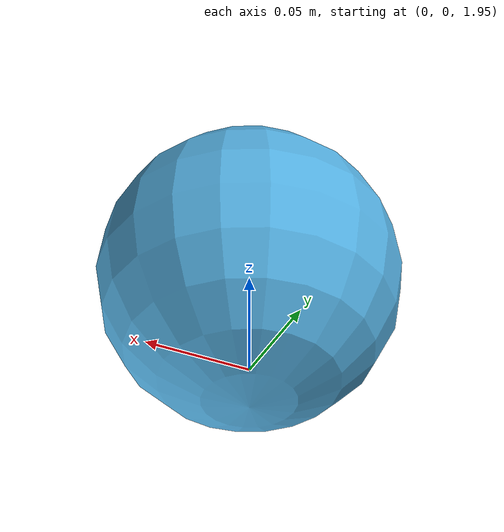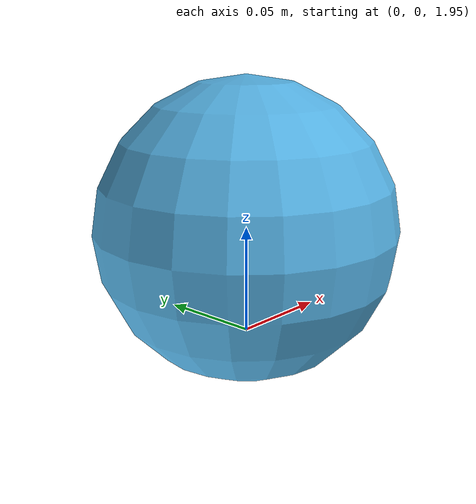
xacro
<?xml version='1.0'?>

<robot name="my_object" xmlns:xacro="http://www.ros.org/wiki/xacro">
  <xacro:include filename="$(find simulation)/models/object/my_object.gazebo" />

  <link name='base_link'>
    <pose>1 0 2 0 0 0</pose>
  </link>
  <joint type="fixed" name="base_link_to_chassis">
    <child link="my_object_link"/>
    <parent link="base_link"/>
  </joint>

  <link name='my_object_link'>

    <inertial>
      <mass value="1"/>
      <origin xyz="0 0 2" rpy="0 0 0"/>
      <inertia ixx="0.1" ixy="0" ixz="0" iyy="0.1" iyz="0" izz="0.1" />
    </inertial>

    <gravity>1</gravity>
    <collision name='collision'>
      <origin xyz="0 0 2" rpy=" 0 0 0"/>
      <geometry>
        <sphere radius="0.07"/>
      </geometry>
    </collision>

    <visual name='base_link_visual'>
	  <origin xyz="0 0 2" rpy=" 0 0 0"/>
      <geometry>
        <sphere radius="0.07"/>
      </geometry>
    </visual>
  </link>

</robot>
